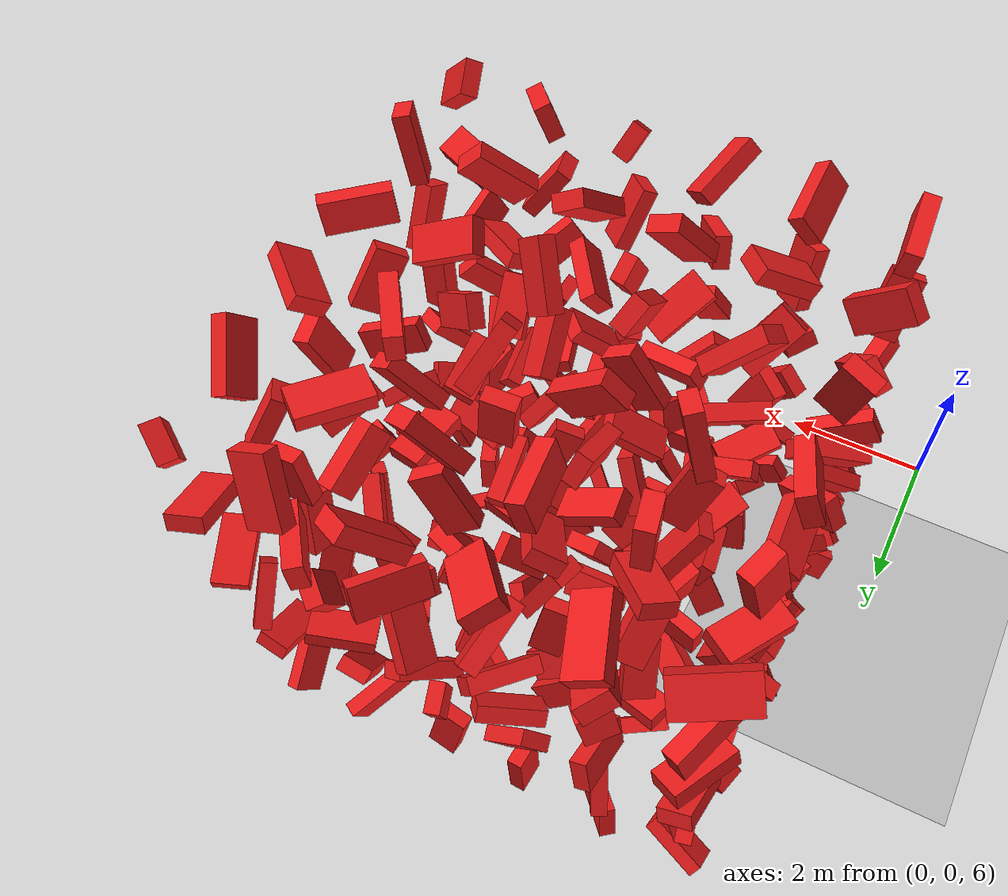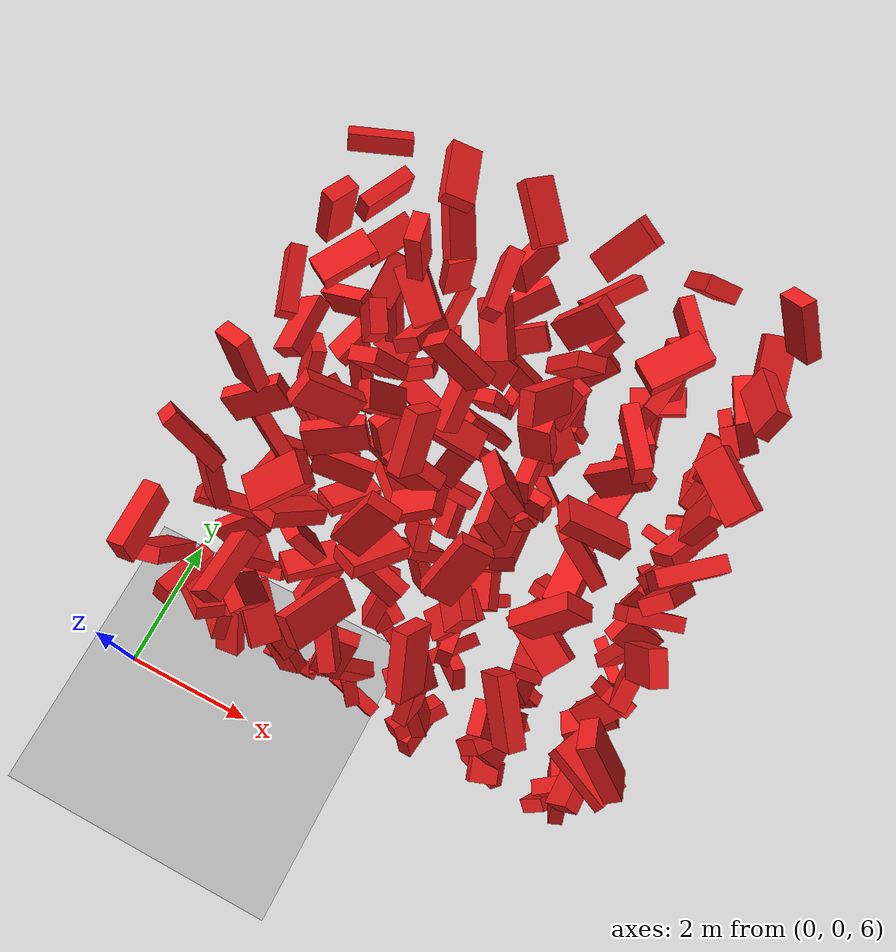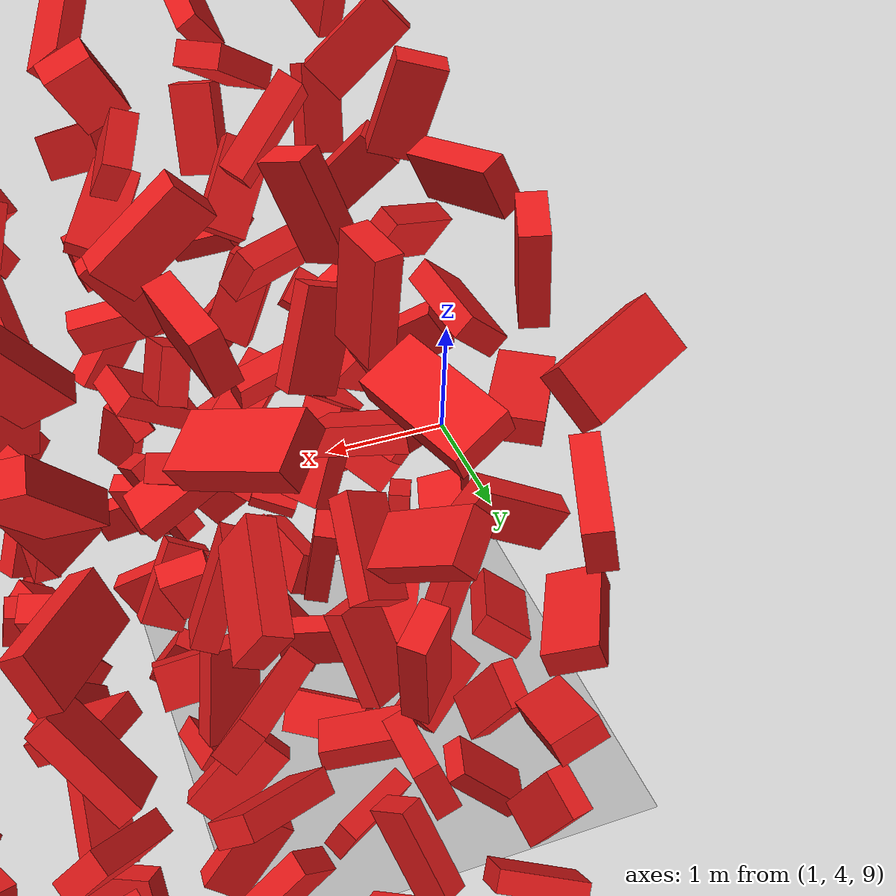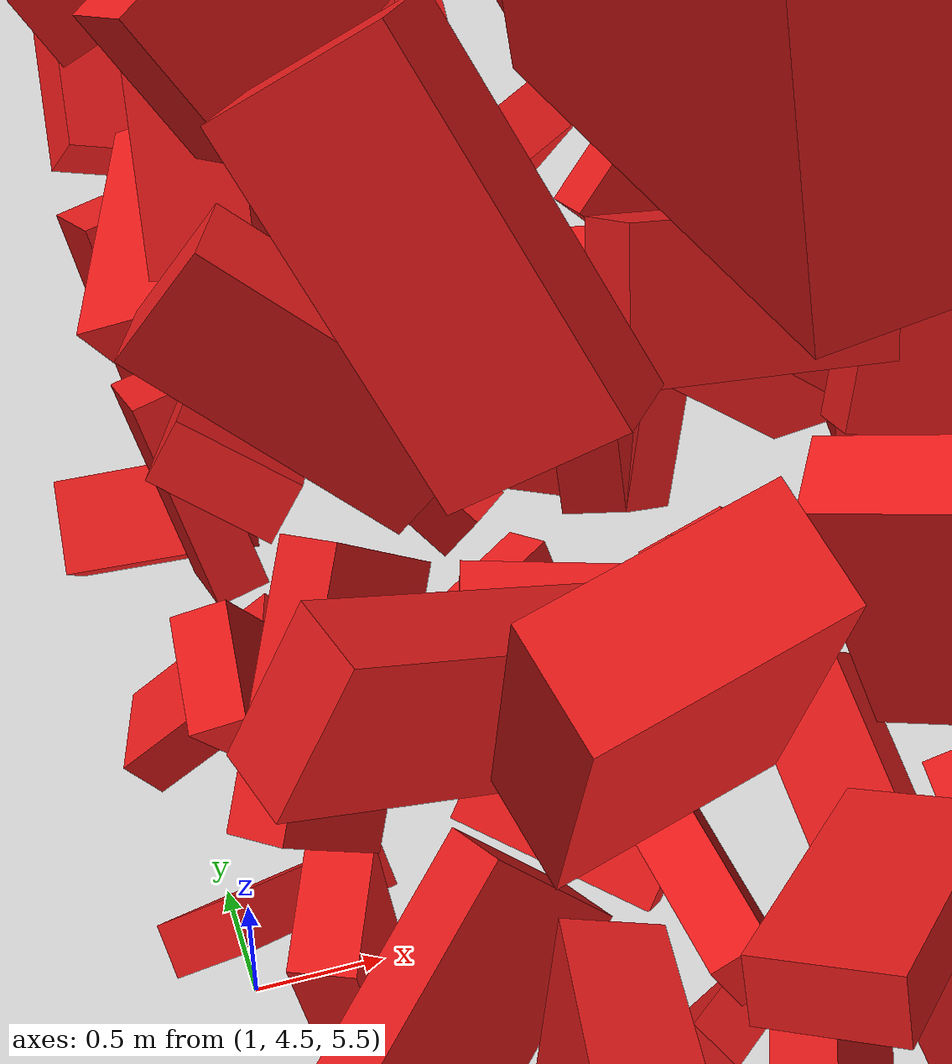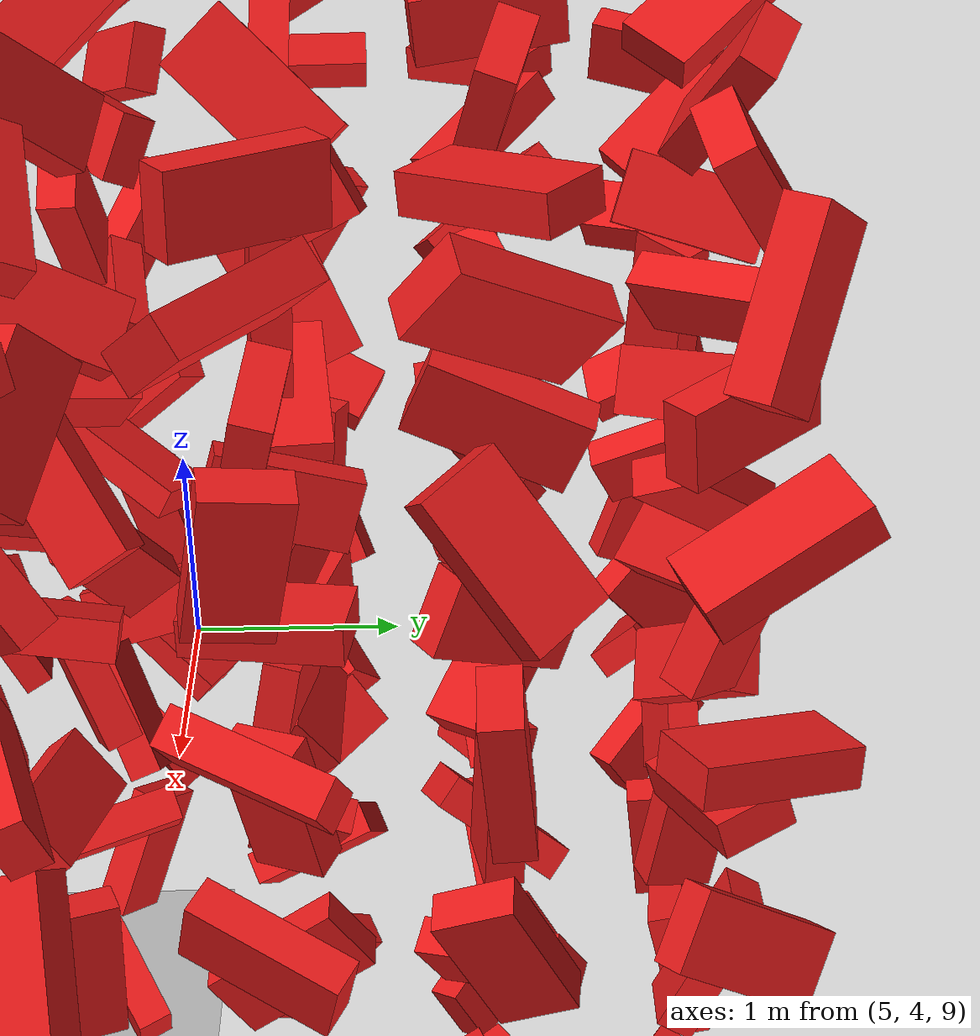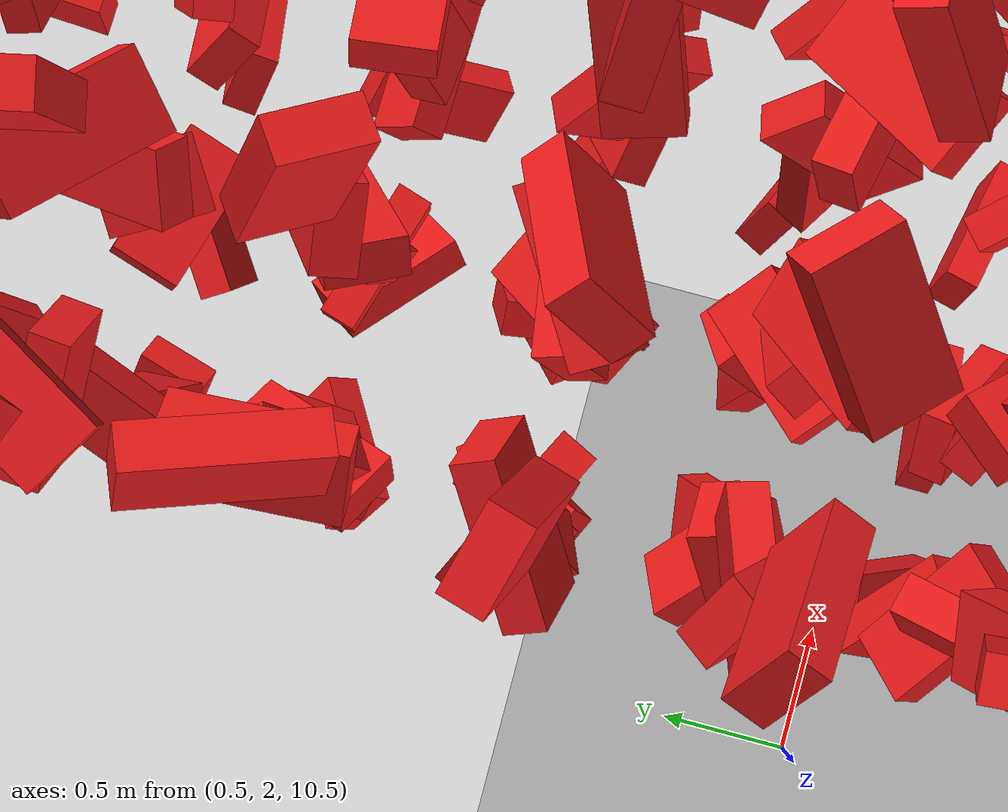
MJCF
<mujoco model="Humanoid and 100 objects">
    <compiler angle="degree"/>

    <option timestep="0.01" iterations="50" solver="PGS" jacobian="sparse" cone="elliptic" tolerance="1e-10"/>

    <size njmax="5000" nconmax="2000" nstack="1000000000"/>

    <default>
        <geom solimp=".9 .9 .01"/>

        <default class="object5">
			<geom type="box" material="geom" rgba=".9 .1 .1 1" size="0.400000 0.200000 0.100000"/>
        </default>
    </default>

    <asset>
        <texture type="skybox" builtin="gradient" width="128" height="128" rgb1=".4 .6 .8" rgb2="0 0 0"/>
        <texture name="texgeom" type="cube" builtin="flat" mark="cross" width="128" height="128"
            rgb1="0.6 0.6 0.6" rgb2="0.6 0.6 0.6" markrgb="1 1 1"/>
        <texture name="texplane" type="2d" builtin="checker" rgb1=".4 .4 .4" rgb2=".6 .6 .6"
            width="512" height="512"/>
        <material name='geom' texture="texgeom" texuniform="true"/>
        <material name='MatPlane' reflectance='0.3' texture="texplane" texrepeat="1 1" texuniform="true"/>
    </asset>

    <visual>
        <quality shadowsize="4096" offsamples="8"/>
        <map znear="0.1" force="0.05"/>
    </visual>

    <statistic extent="4"/>

    <worldbody>
        <light directional="true" diffuse=".8 .8 .8" pos="0 0 10" dir="0 0 -10"/>

        <geom pos="0 0 0" type="plane" size="3 3 .5" rgba=".7 .7 .7 1" material="MatPlane"/>
		<body pos="1.100191 1.100422 6.100310" quat="0.238620 -0.580174 -0.697054 -0.347238"> <freejoint/> <geom class="object5"/> </body>
		<body pos="1.100316 1.100036 7.200261" quat="-0.303019 0.848185 -0.127868 0.415225"> <freejoint/> <geom class="object5"/> </body>
		<body pos="1.100192 1.100236 8.300587" quat="0.314180 -0.162882 0.319775 0.878922"> <freejoint/> <geom class="object5"/> </body>
		<body pos="1.100655 1.100380 9.400304" quat="-0.294429 0.559573 -0.506297 0.586389"> <freejoint/> <geom class="object5"/> </body>
		<body pos="1.100516 1.100337 10.500049" quat="0.468975 0.579008 0.608567 -0.272872"> <freejoint/> <geom class="object5"/> </body>
		<body pos="1.100363 1.100308 11.600396" quat="-0.527208 -0.513137 0.538139 0.411277"> <freejoint/> <geom class="object5"/> </body>
		<body pos="1.100491 2.200999 6.100408" quat="0.502981 0.848894 -0.008229 0.162242"> <freejoint/> <geom class="object5"/> </body>
		<body pos="1.100736 2.200838 7.200647" quat="-0.100446 -0.404626 -0.801458 0.428782"> <freejoint/> <geom class="object5"/> </body>
		<body pos="1.100887 2.200642 8.300525" quat="-0.716420 -0.561958 0.114139 -0.397389"> <freejoint/> <geom class="object5"/> </body>
		<body pos="1.100162 2.200912 9.400837" quat="0.261951 -0.060243 -0.675950 -0.686180"> <freejoint/> <geom class="object5"/> </body>
		<body pos="1.100259 2.200153 10.500646" quat="-0.617281 0.557791 -0.548623 -0.082742"> <freejoint/> <geom class="object5"/> </body>
		<body pos="1.100260 2.200766 11.600835" quat="-0.347698 -0.165816 0.759202 -0.524618"> <freejoint/> <geom class="object5"/> </body>
		<body pos="1.100769 3.300629 6.100248" quat="-0.229177 -0.497906 0.809976 -0.208583"> <freejoint/> <geom class="object5"/> </body>
		<body pos="1.100871 3.300106 7.200661" quat="-0.025653 -0.648804 0.265729 -0.712590"> <freejoint/> <geom class="object5"/> </body>
		<body pos="1.100719 3.300549 8.300984" quat="-0.558681 -0.041924 -0.579253 0.592101"> <freejoint/> <geom class="object5"/> </body>
		<body pos="1.100434 3.300106 9.400581" quat="-0.700668 0.616954 -0.355819 -0.042724"> <freejoint/> <geom class="object5"/> </body>
		<body pos="1.100716 3.300549 10.500203" quat="-0.016285 0.327221 -0.763381 -0.556697"> <freejoint/> <geom class="object5"/> </body>
		<body pos="1.100439 3.300691 11.600453" quat="0.523217 0.330168 -0.592499 0.515925"> <freejoint/> <geom class="object5"/> </body>
		<body pos="1.100103 4.400409 6.100067" quat="0.428434 0.840662 0.323731 -0.070216"> <freejoint/> <geom class="object5"/> </body>
		<body pos="1.100155 4.400078 7.200457" quat="-0.210529 0.829052 0.085596 -0.510905"> <freejoint/> <geom class="object5"/> </body>
		<body pos="1.100500 4.400229 8.300167" quat="-0.524807 0.297554 -0.081135 0.793383"> <freejoint/> <geom class="object5"/> </body>
		<body pos="1.100821 4.400281 9.400657" quat="-0.570470 0.388315 -0.721429 -0.057577"> <freejoint/> <geom class="object5"/> </body>
		<body pos="1.100249 4.400722 10.500851" quat="-0.640980 0.246172 0.258649 -0.679444"> <freejoint/> <geom class="object5"/> </body>
		<body pos="1.100456 4.400121 11.600450" quat="0.518938 -0.623114 0.530630 -0.246706"> <freejoint/> <geom class="object5"/> </body>
		<body pos="1.100851 5.500067 6.100244" quat="-0.376771 -0.132571 -0.915014 0.056730"> <freejoint/> <geom class="object5"/> </body>
		<body pos="1.100844 5.500671 7.200928" quat="-0.104560 -0.610405 -0.178405 -0.764621"> <freejoint/> <geom class="object5"/> </body>
		<body pos="1.100137 5.500113 8.300796" quat="0.817604 -0.116307 -0.283975 0.487191"> <freejoint/> <geom class="object5"/> </body>
		<body pos="1.100481 5.500567 9.400187" quat="-0.154365 -0.211524 -0.659174 0.704925"> <freejoint/> <geom class="object5"/> </body>
		<body pos="1.100753 5.500090 10.500345" quat="-0.488298 -0.042054 -0.013062 0.871565"> <freejoint/> <geom class="object5"/> </body>
		<body pos="1.100165 5.500839 11.600767" quat="0.070061 -0.650873 0.185244 0.732899"> <freejoint/> <geom class="object5"/> </body>
		<body pos="1.100232 6.600603 6.100693" quat="-0.913030 -0.345210 0.187170 0.110337"> <freejoint/> <geom class="object5"/> </body>
		<body pos="1.100260 6.600244 7.200331" quat="0.631461 -0.064564 -0.744120 0.208263"> <freejoint/> <geom class="object5"/> </body>
		<body pos="1.100936 6.600633 8.300714" quat="-0.671555 -0.060540 -0.304796 0.672643"> <freejoint/> <geom class="object5"/> </body>
		<body pos="1.100418 6.600046 9.400620" quat="-0.068039 -0.504618 0.838540 0.193863"> <freejoint/> <geom class="object5"/> </body>
		<body pos="1.100825 6.600150 10.500594" quat="0.322147 -0.473977 0.613962 -0.542787"> <freejoint/> <geom class="object5"/> </body>
		<body pos="1.100199 6.600229 11.600317" quat="0.018541 -0.230036 0.912304 -0.338293"> <freejoint/> <geom class="object5"/> </body>
		<body pos="2.200665 1.100806 6.100078" quat="-0.660930 -0.694143 -0.202461 0.200864"> <freejoint/> <geom class="object5"/> </body>
		<body pos="2.200833 1.100384 7.200511" quat="-0.405896 -0.191106 0.529800 -0.719750"> <freejoint/> <geom class="object5"/> </body>
		<body pos="2.200155 1.100053 8.300442" quat="0.677070 -0.559914 0.442714 0.179099"> <freejoint/> <geom class="object5"/> </body>
		<body pos="2.200490 1.100463 9.400539" quat="-0.276765 0.373052 0.885360 -0.019246"> <freejoint/> <geom class="object5"/> </body>
		<body pos="2.200578 1.100294 10.500650" quat="0.559326 0.412025 -0.693330 0.191530"> <freejoint/> <geom class="object5"/> </body>
		<body pos="2.200061 1.100412 11.600934" quat="-0.608975 0.366128 0.256531 -0.655203"> <freejoint/> <geom class="object5"/> </body>
		<body pos="2.200487 2.200245 6.100600" quat="0.445777 0.614601 -0.443416 0.476372"> <freejoint/> <geom class="object5"/> </body>
		<body pos="2.200584 2.200007 7.200104" quat="0.551152 -0.559184 -0.618512 0.031412"> <freejoint/> <geom class="object5"/> </body>
		<body pos="2.200416 2.200688 8.300712" quat="0.896094 -0.179873 0.057720 0.401659"> <freejoint/> <geom class="object5"/> </body>
		<body pos="2.200888 2.200998 9.400427" quat="-0.373499 -0.735251 -0.279965 0.491452"> <freejoint/> <geom class="object5"/> </body>
		<body pos="2.200621 2.200300 10.500684" quat="-0.402232 -0.763807 -0.467559 0.190256"> <freejoint/> <geom class="object5"/> </body>
		<body pos="2.200259 2.200338 11.600462" quat="-0.346068 -0.254548 -0.163078 0.888171"> <freejoint/> <geom class="object5"/> </body>
		<body pos="2.200594 3.300448 6.100273" quat="0.803853 -0.312562 -0.429962 -0.266941"> <freejoint/> <geom class="object5"/> </body>
		<body pos="2.200542 3.300734 7.200979" quat="0.342207 0.678108 -0.509426 -0.404411"> <freejoint/> <geom class="object5"/> </body>
		<body pos="2.200769 3.300939 8.300831" quat="-0.482677 0.092153 0.220396 0.842589"> <freejoint/> <geom class="object5"/> </body>
		<body pos="2.200956 3.300203 9.400293" quat="0.135616 0.008464 -0.846879 -0.514133"> <freejoint/> <geom class="object5"/> </body>
		<body pos="2.200290 3.300039 10.500640" quat="-0.255762 0.104996 -0.509379 0.814920"> <freejoint/> <geom class="object5"/> </body>
		<body pos="2.200565 3.300640 11.600007" quat="-0.006949 -0.402074 0.379606 -0.833179"> <freejoint/> <geom class="object5"/> </body>
		<body pos="2.200013 4.400532 6.100430" quat="0.329794 0.871373 -0.295061 -0.211859"> <freejoint/> <geom class="object5"/> </body>
		<body pos="2.200747 4.400719 7.200984" quat="-0.113308 0.096898 0.715723 -0.682285"> <freejoint/> <geom class="object5"/> </body>
		<body pos="2.200077 4.400843 8.300323" quat="-0.117160 0.735412 -0.163233 -0.647146"> <freejoint/> <geom class="object5"/> </body>
		<body pos="2.200022 4.400006 9.400067" quat="-0.842362 0.002259 -0.474728 -0.255059"> <freejoint/> <geom class="object5"/> </body>
		<body pos="2.200860 4.400924 10.500943" quat="-0.611523 0.537886 -0.280091 -0.508200"> <freejoint/> <geom class="object5"/> </body>
		<body pos="2.200817 4.400637 11.600571" quat="-0.754720 -0.304525 0.573824 -0.091588"> <freejoint/> <geom class="object5"/> </body>
		<body pos="2.200229 5.500732 6.100164" quat="0.110846 0.262317 -0.775003 -0.564157"> <freejoint/> <geom class="object5"/> </body>
		<body pos="2.200147 5.500713 7.200862" quat="-0.144168 -0.081066 0.113506 -0.979674"> <freejoint/> <geom class="object5"/> </body>
		<body pos="2.200197 5.500320 8.300785" quat="-0.751543 0.172642 0.436732 0.463295"> <freejoint/> <geom class="object5"/> </body>
		<body pos="2.200238 5.500695 9.400328" quat="0.670746 0.011543 -0.399107 -0.625044"> <freejoint/> <geom class="object5"/> </body>
		<body pos="2.200777 5.500897 10.500521" quat="-0.109238 0.384412 0.887259 0.230362"> <freejoint/> <geom class="object5"/> </body>
		<body pos="2.200041 5.500779 11.600597" quat="-0.084929 -0.717360 -0.060249 0.688877"> <freejoint/> <geom class="object5"/> </body>
		<body pos="2.200346 6.600905 6.100654" quat="0.137622 0.434092 0.495457 0.739694"> <freejoint/> <geom class="object5"/> </body>
		<body pos="2.200129 6.600282 7.200851" quat="-0.683323 -0.401883 0.605801 0.067567"> <freejoint/> <geom class="object5"/> </body>
		<body pos="2.200359 6.600905 8.300064" quat="0.501140 -0.465954 0.663978 -0.301461"> <freejoint/> <geom class="object5"/> </body>
		<body pos="2.200919 6.600371 9.400920" quat="-0.300372 -0.671352 0.235466 -0.635309"> <freejoint/> <geom class="object5"/> </body>
		<body pos="2.200313 6.600241 10.500146" quat="-0.381288 0.391407 0.835424 -0.059038"> <freejoint/> <geom class="object5"/> </body>
		<body pos="2.200052 6.600882 11.600373" quat="-0.190898 -0.794857 0.568120 0.094869"> <freejoint/> <geom class="object5"/> </body>
		<body pos="3.300777 1.100145 6.100266" quat="0.031405 -0.196308 -0.672871 -0.712546"> <freejoint/> <geom class="object5"/> </body>
		<body pos="3.300118 1.100947 7.200327" quat="-0.639341 -0.140774 0.669666 -0.350676"> <freejoint/> <geom class="object5"/> </body>
		<body pos="3.300005 1.100670 8.300268" quat="0.107068 0.421080 -0.538490 0.721981"> <freejoint/> <geom class="object5"/> </body>
		<body pos="3.300435 1.100052 9.400403" quat="0.479135 -0.593627 -0.595160 -0.252629"> <freejoint/> <geom class="object5"/> </body>
		<body pos="3.300442 1.100419 10.500455" quat="-0.482304 -0.716291 0.200565 0.462692"> <freejoint/> <geom class="object5"/> </body>
		<body pos="3.300560 1.100706 11.600228" quat="-0.794948 -0.189577 -0.344041 -0.462335"> <freejoint/> <geom class="object5"/> </body>
		<body pos="3.300132 2.200551 6.100317" quat="-0.730256 0.590882 -0.340949 -0.036572"> <freejoint/> <geom class="object5"/> </body>
		<body pos="3.300102 2.200095 7.200242" quat="0.327690 0.488065 0.359372 -0.724751"> <freejoint/> <geom class="object5"/> </body>
		<body pos="3.300107 2.201000 8.300832" quat="0.531610 -0.391446 0.731781 -0.169285"> <freejoint/> <geom class="object5"/> </body>
		<body pos="3.300654 2.200861 9.400412" quat="0.154891 0.028684 -0.580579 0.798821"> <freejoint/> <geom class="object5"/> </body>
		<body pos="3.300449 2.200388 10.500788" quat="-0.267915 -0.822380 -0.489067 0.112811"> <freejoint/> <geom class="object5"/> </body>
		<body pos="3.300099 2.200563 11.600133" quat="0.501452 0.232469 0.489424 -0.674513"> <freejoint/> <geom class="object5"/> </body>
		<body pos="3.300185 3.300933 6.100267" quat="0.550526 0.178803 -0.636993 0.509108"> <freejoint/> <geom class="object5"/> </body>
		<body pos="3.300731 3.300576 7.200012" quat="0.474562 0.719947 0.435123 -0.259105"> <freejoint/> <geom class="object5"/> </body>
		<body pos="3.300739 3.300992 8.300195" quat="-0.527300 -0.082884 -0.791467 -0.297767"> <freejoint/> <geom class="object5"/> </body>
		<body pos="3.300327 3.300572 9.400408" quat="0.347651 -0.148187 0.925431 -0.027498"> <freejoint/> <geom class="object5"/> </body>
		<body pos="3.300744 3.300161 10.500300" quat="0.318940 0.343772 0.641565 -0.607036"> <freejoint/> <geom class="object5"/> </body>
		<body pos="3.300831 3.300609 11.600375" quat="0.572936 -0.377563 -0.711198 0.152932"> <freejoint/> <geom class="object5"/> </body>
		<body pos="3.300751 4.400249 6.100393" quat="0.095283 0.669883 0.604754 0.420060"> <freejoint/> <geom class="object5"/> </body>
		<body pos="3.300203 4.400547 7.200227" quat="0.451385 0.890898 0.009686 -0.049588"> <freejoint/> <geom class="object5"/> </body>
		<body pos="3.300105 4.400834 8.300677" quat="-0.651024 -0.445320 0.352350 -0.503693"> <freejoint/> <geom class="object5"/> </body>
		<body pos="3.300300 4.400879 9.400786" quat="-0.019389 -0.965646 -0.057465 0.252684"> <freejoint/> <geom class="object5"/> </body>
		<body pos="3.300493 4.400826 10.500049" quat="-0.262585 -0.654695 0.435995 0.558866"> <freejoint/> <geom class="object5"/> </body>
		<body pos="3.300947 4.400315 11.600786" quat="0.245441 0.257790 -0.627638 0.692368"> <freejoint/> <geom class="object5"/> </body>
		<body pos="3.300820 5.500238 6.100146" quat="0.538394 0.732244 0.314517 -0.273916"> <freejoint/> <geom class="object5"/> </body>
		<body pos="3.300871 5.500570 7.200216" quat="-0.447119 -0.816118 -0.236499 0.279472"> <freejoint/> <geom class="object5"/> </body>
		<body pos="3.300733 5.500081 8.300167" quat="0.510544 0.567660 0.557808 -0.325512"> <freejoint/> <geom class="object5"/> </body>
		<body pos="3.300613 5.500816 9.400751" quat="-0.535166 -0.035462 0.819077 0.203599"> <freejoint/> <geom class="object5"/> </body>
		<body pos="3.300355 5.500970 10.500302" quat="-0.513426 -0.060612 0.374058 -0.769936"> <freejoint/> <geom class="object5"/> </body>
		<body pos="3.300031 5.500519 11.600882" quat="-0.551678 0.364058 0.483751 -0.573670"> <freejoint/> <geom class="object5"/> </body>
		<body pos="3.300321 6.600167 6.100847" quat="-0.053255 0.695212 0.020708 -0.716530"> <freejoint/> <geom class="object5"/> </body>
		<body pos="3.300628 6.600635 7.200768" quat="0.224833 0.314156 -0.542069 0.746268"> <freejoint/> <geom class="object5"/> </body>
		<body pos="3.300662 6.600236 8.300214" quat="0.863966 0.418222 -0.050858 0.275802"> <freejoint/> <geom class="object5"/> </body>
		<body pos="3.300223 6.600959 9.400257" quat="0.740474 0.514290 0.126848 0.413660"> <freejoint/> <geom class="object5"/> </body>
		<body pos="3.300280 6.600248 10.500076" quat="0.418112 0.491925 -0.688836 -0.329693"> <freejoint/> <geom class="object5"/> </body>
		<body pos="3.300607 6.600088 11.600372" quat="-0.359096 -0.244806 -0.079097 -0.897142"> <freejoint/> <geom class="object5"/> </body>
		<body pos="4.400361 1.100121 6.100427" quat="-0.651890 -0.350156 -0.478716 -0.472505"> <freejoint/> <geom class="object5"/> </body>
		<body pos="4.400525 1.100735 7.200104" quat="0.439543 0.165796 -0.436546 -0.767295"> <freejoint/> <geom class="object5"/> </body>
		<body pos="4.400618 1.100073 8.300129" quat="0.535046 -0.028581 -0.790627 0.296342"> <freejoint/> <geom class="object5"/> </body>
		<body pos="4.400054 1.100798 9.400622" quat="-0.154588 -0.702628 0.235211 0.653523"> <freejoint/> <geom class="object5"/> </body>
		<body pos="4.400110 1.100751 10.500215" quat="0.494032 0.378607 -0.775764 0.103820"> <freejoint/> <geom class="object5"/> </body>
		<body pos="4.400463 1.100613 11.600190" quat="0.504670 -0.339127 -0.768037 0.201050"> <freejoint/> <geom class="object5"/> </body>
		<body pos="4.400258 2.200712 6.100939" quat="0.432691 0.081090 0.768268 0.464723"> <freejoint/> <geom class="object5"/> </body>
		<body pos="4.400487 2.200578 7.200897" quat="-0.644137 -0.526807 -0.553455 -0.035349"> <freejoint/> <geom class="object5"/> </body>
		<body pos="4.400846 2.200731 8.300624" quat="0.605948 0.444038 -0.531358 -0.391556"> <freejoint/> <geom class="object5"/> </body>
		<body pos="4.400753 2.200006 9.400748" quat="0.374870 -0.339155 0.845324 0.172837"> <freejoint/> <geom class="object5"/> </body>
		<body pos="4.400449 2.200806 10.500430" quat="-0.791169 -0.407096 0.268803 0.368875"> <freejoint/> <geom class="object5"/> </body>
		<body pos="4.400228 2.200018 11.600671" quat="0.098132 -0.596897 0.650878 0.458741"> <freejoint/> <geom class="object5"/> </body>
		<body pos="4.400057 3.300959 6.100691" quat="-0.376296 0.017152 0.640883 0.668862"> <freejoint/> <geom class="object5"/> </body>
		<body pos="4.400772 3.300050 7.200521" quat="0.174331 0.540741 0.747141 0.344947"> <freejoint/> <geom class="object5"/> </body>
		<body pos="4.400397 3.300377 8.300057" quat="-0.183386 -0.542137 0.563395 -0.595855"> <freejoint/> <geom class="object5"/> </body>
		<body pos="4.400381 3.300264 9.400020" quat="0.147687 -0.474126 0.285612 -0.819646"> <freejoint/> <geom class="object5"/> </body>
		<body pos="4.400162 3.300532 10.500610" quat="0.065870 -0.651825 -0.610792 0.444655"> <freejoint/> <geom class="object5"/> </body>
		<body pos="4.400295 3.300194 11.600185" quat="-0.627935 0.564429 0.045658 0.533885"> <freejoint/> <geom class="object5"/> </body>
		<body pos="4.400424 4.400804 6.100937" quat="-0.062367 -0.703231 -0.415640 -0.573429"> <freejoint/> <geom class="object5"/> </body>
		<body pos="4.400663 4.400968 7.200751" quat="0.168581 0.864969 0.098561 0.462271"> <freejoint/> <geom class="object5"/> </body>
		<body pos="4.400270 4.400850 8.300610" quat="-0.003844 -0.123770 -0.636272 0.761462"> <freejoint/> <geom class="object5"/> </body>
		<body pos="4.400093 4.400761 9.400005" quat="-0.554670 -0.487022 0.574676 0.353410"> <freejoint/> <geom class="object5"/> </body>
		<body pos="4.400547 4.400799 10.500565" quat="0.579259 0.494967 0.480783 -0.433953"> <freejoint/> <geom class="object5"/> </body>
		<body pos="4.400647 4.400074 11.600896" quat="0.321181 -0.486941 0.212254 -0.784015"> <freejoint/> <geom class="object5"/> </body>
		<body pos="4.400809 5.500017 6.100846" quat="-0.796739 0.498451 -0.300443 0.162751"> <freejoint/> <geom class="object5"/> </body>
		<body pos="4.400955 5.500625 7.200063" quat="-0.414695 -0.603321 -0.678986 0.054856"> <freejoint/> <geom class="object5"/> </body>
		<body pos="4.400901 5.500825 8.300437" quat="-0.889835 -0.205496 -0.255362 0.317418"> <freejoint/> <geom class="object5"/> </body>
		<body pos="4.400563 5.500194 9.400617" quat="-0.322842 0.681269 0.469099 0.459990"> <freejoint/> <geom class="object5"/> </body>
		<body pos="4.400541 5.500539 10.500078" quat="-0.316247 0.395780 -0.460512 -0.728886"> <freejoint/> <geom class="object5"/> </body>
		<body pos="4.400616 5.500548 11.600098" quat="0.333731 -0.332936 0.731397 0.492784"> <freejoint/> <geom class="object5"/> </body>
		<body pos="4.400538 6.600402 6.100805" quat="-0.625927 0.458311 -0.405238 -0.483683"> <freejoint/> <geom class="object5"/> </body>
		<body pos="4.400262 6.600366 7.200899" quat="0.652376 0.021949 -0.735303 0.182354"> <freejoint/> <geom class="object5"/> </body>
		<body pos="4.400561 6.600009 8.300518" quat="-0.433736 -0.059086 -0.518938 0.734224"> <freejoint/> <geom class="object5"/> </body>
		<body pos="4.400199 6.600660 9.400218" quat="0.284102 -0.398997 -0.124312 0.862922"> <freejoint/> <geom class="object5"/> </body>
		<body pos="4.400098 6.600770 10.500970" quat="-0.800664 0.402403 0.269319 -0.352812"> <freejoint/> <geom class="object5"/> </body>
		<body pos="4.400637 6.600629 11.600235" quat="0.311821 -0.402243 0.773139 0.378451"> <freejoint/> <geom class="object5"/> </body>
		<body pos="5.500475 1.100411 6.100765" quat="-0.380159 0.857474 -0.016787 0.346316"> <freejoint/> <geom class="object5"/> </body>
		<body pos="5.500323 1.100385 7.200525" quat="-0.805856 0.040944 -0.144038 0.572863"> <freejoint/> <geom class="object5"/> </body>
		<body pos="5.500960 1.100442 8.300969" quat="0.000267 -0.536294 0.016887 -0.843862"> <freejoint/> <geom class="object5"/> </body>
		<body pos="5.500743 1.100006 9.400564" quat="-0.475824 -0.113580 0.591437 0.641009"> <freejoint/> <geom class="object5"/> </body>
		<body pos="5.500971 1.100547 10.500270" quat="-0.881080 0.001398 -0.458119 -0.117568"> <freejoint/> <geom class="object5"/> </body>
		<body pos="5.500012 1.100609 11.600274" quat="0.663259 0.580923 -0.116028 -0.457333"> <freejoint/> <geom class="object5"/> </body>
		<body pos="5.500539 2.200685 6.100723" quat="-0.291522 0.384077 -0.692540 -0.536552"> <freejoint/> <geom class="object5"/> </body>
		<body pos="5.500616 2.200666 7.200542" quat="-0.169168 0.649552 -0.355272 -0.650574"> <freejoint/> <geom class="object5"/> </body>
		<body pos="5.500161 2.200033 8.300762" quat="0.236605 -0.654864 -0.572446 0.432986"> <freejoint/> <geom class="object5"/> </body>
		<body pos="5.500423 2.200368 9.400771" quat="0.705247 -0.226710 -0.271513 -0.614419"> <freejoint/> <geom class="object5"/> </body>
		<body pos="5.500330 2.200511 10.500934" quat="-0.299007 0.914413 -0.272675 0.009556"> <freejoint/> <geom class="object5"/> </body>
		<body pos="5.500234 2.200756 11.600793" quat="-0.625061 0.634775 0.437891 0.120875"> <freejoint/> <geom class="object5"/> </body>
		<body pos="5.500070 3.300647 6.100177" quat="-0.595321 -0.108448 -0.538046 0.586803"> <freejoint/> <geom class="object5"/> </body>
		<body pos="5.500775 3.300462 7.200919" quat="0.661616 0.118593 -0.726046 0.145108"> <freejoint/> <geom class="object5"/> </body>
		<body pos="5.500117 3.300952 8.300762" quat="-0.130710 0.027803 -0.410960 -0.901806"> <freejoint/> <geom class="object5"/> </body>
		<body pos="5.500820 3.300801 9.400723" quat="-0.667659 0.207550 0.092718 -0.708913"> <freejoint/> <geom class="object5"/> </body>
		<body pos="5.500992 3.300934 10.500752" quat="0.370751 0.025474 -0.812360 0.449406"> <freejoint/> <geom class="object5"/> </body>
		<body pos="5.500236 3.300484 11.600259" quat="-0.924947 0.290790 -0.194365 -0.148783"> <freejoint/> <geom class="object5"/> </body>
		<body pos="5.500205 4.400794 6.100709" quat="-0.576085 0.503634 -0.112543 -0.633887"> <freejoint/> <geom class="object5"/> </body>
		<body pos="5.500389 4.400907 7.200520" quat="0.323361 0.631855 -0.327266 -0.623774"> <freejoint/> <geom class="object5"/> </body>
		<body pos="5.500989 4.400895 8.300117" quat="0.638878 0.218241 0.729418 -0.110249"> <freejoint/> <geom class="object5"/> </body>
		<body pos="5.500432 4.400889 9.400885" quat="-0.015743 -0.757292 -0.652487 -0.022831"> <freejoint/> <geom class="object5"/> </body>
		<body pos="5.500149 4.400037 10.500890" quat="-0.716205 -0.542623 0.290431 -0.329029"> <freejoint/> <geom class="object5"/> </body>
		<body pos="5.500860 4.400727 11.600055" quat="0.360446 0.294905 0.613626 0.637630"> <freejoint/> <geom class="object5"/> </body>
		<body pos="5.500317 5.500467 6.100138" quat="-0.712698 0.068745 -0.637320 -0.284883"> <freejoint/> <geom class="object5"/> </body>
		<body pos="5.500352 5.500502 7.200675" quat="-0.759250 0.377847 0.349159 -0.398571"> <freejoint/> <geom class="object5"/> </body>
		<body pos="5.500947 5.500116 8.300135" quat="-0.462637 0.572263 -0.451379 -0.504717"> <freejoint/> <geom class="object5"/> </body>
		<body pos="5.500365 5.500832 9.400955" quat="0.538275 -0.669832 0.178003 -0.479479"> <freejoint/> <geom class="object5"/> </body>
		<body pos="5.500588 5.500925 10.500404" quat="0.582977 0.319137 -0.577474 -0.474145"> <freejoint/> <geom class="object5"/> </body>
		<body pos="5.500866 5.500322 11.600763" quat="0.897284 0.012359 -0.068924 0.435865"> <freejoint/> <geom class="object5"/> </body>
		<body pos="5.500295 6.600655 6.100906" quat="0.700527 0.504536 0.448655 0.231116"> <freejoint/> <geom class="object5"/> </body>
		<body pos="5.500644 6.600378 7.200615" quat="-0.639123 -0.435895 -0.280415 0.568229"> <freejoint/> <geom class="object5"/> </body>
		<body pos="5.500203 6.600256 8.300832" quat="-0.127254 0.967835 0.194343 0.096609"> <freejoint/> <geom class="object5"/> </body>
		<body pos="5.500671 6.600340 9.400984" quat="-0.131498 0.642598 0.414138 0.631083"> <freejoint/> <geom class="object5"/> </body>
		<body pos="5.500500 6.600111 10.500561" quat="0.289334 0.318156 0.616436 0.659598"> <freejoint/> <geom class="object5"/> </body>
		<body pos="5.500177 6.600570 11.600106" quat="0.503743 -0.295826 0.409561 0.700706"> <freejoint/> <geom class="object5"/> </body>
		<body pos="6.600982 1.100057 6.100844" quat="0.532238 0.017110 -0.603627 -0.593350"> <freejoint/> <geom class="object5"/> </body>
		<body pos="6.600927 1.100973 7.200980" quat="0.228775 -0.528132 -0.469022 0.669893"> <freejoint/> <geom class="object5"/> </body>
		<body pos="6.600251 1.100221 8.300814" quat="-0.097430 0.437913 -0.581565 -0.678617"> <freejoint/> <geom class="object5"/> </body>
		<body pos="6.600176 1.100209 9.400531" quat="-0.320029 0.627124 -0.602690 0.375582"> <freejoint/> <geom class="object5"/> </body>
		<body pos="6.600716 1.100739 10.500416" quat="0.051124 -0.203279 -0.961827 0.175936"> <freejoint/> <geom class="object5"/> </body>
		<body pos="6.600292 1.100258 11.600601" quat="0.421669 -0.050178 -0.850740 0.309709"> <freejoint/> <geom class="object5"/> </body>
		<body pos="6.600472 2.201000 6.100344" quat="-0.351202 -0.557838 -0.611360 -0.437850"> <freejoint/> <geom class="object5"/> </body>
		<body pos="6.600222 2.200374 7.200890" quat="-0.895829 0.190605 0.303205 -0.263111"> <freejoint/> <geom class="object5"/> </body>
		<body pos="6.600144 2.200865 8.300731" quat="0.363675 -0.422383 0.767482 0.316710"> <freejoint/> <geom class="object5"/> </body>
		<body pos="6.600210 2.200193 9.400651" quat="-0.519457 -0.548975 0.566178 -0.328987"> <freejoint/> <geom class="object5"/> </body>
		<body pos="6.600077 2.200304 10.500667" quat="0.209978 -0.673728 -0.212840 0.675794"> <freejoint/> <geom class="object5"/> </body>
		<body pos="6.600816 2.200259 11.600395" quat="0.267866 -0.742543 -0.087037 -0.607703"> <freejoint/> <geom class="object5"/> </body>
		<body pos="6.600522 3.300393 6.100988" quat="0.362309 0.177807 0.604472 0.686826"> <freejoint/> <geom class="object5"/> </body>
		<body pos="6.600909 3.300309 7.200167" quat="0.677008 -0.423061 -0.580368 -0.160786"> <freejoint/> <geom class="object5"/> </body>
		<body pos="6.600100 3.300010 8.300042" quat="0.269728 -0.873747 0.061778 0.399996"> <freejoint/> <geom class="object5"/> </body>
		<body pos="6.600177 3.300069 9.400950" quat="0.599269 0.767042 0.228554 -0.016899"> <freejoint/> <geom class="object5"/> </body>
		<body pos="6.600386 3.300074 10.500366" quat="0.509786 -0.608015 0.036691 0.607528"> <freejoint/> <geom class="object5"/> </body>
		<body pos="6.600478 3.300353 11.600791" quat="-0.713865 0.610084 0.221346 -0.263059"> <freejoint/> <geom class="object5"/> </body>
		<body pos="6.600088 4.400990 6.100084" quat="0.422618 -0.479751 0.642863 0.421852"> <freejoint/> <geom class="object5"/> </body>
		<body pos="6.600121 4.400876 7.200867" quat="-0.058011 -0.603198 -0.462375 0.647299"> <freejoint/> <geom class="object5"/> </body>
		<body pos="6.600492 4.400930 8.300055" quat="-0.244985 0.485222 -0.594957 0.592088"> <freejoint/> <geom class="object5"/> </body>
		<body pos="6.600510 4.400913 9.400574" quat="0.405372 0.735290 0.520369 0.155687"> <freejoint/> <geom class="object5"/> </body>
		<body pos="6.600791 4.400748 10.500314" quat="0.006860 0.768820 0.109414 0.629998"> <freejoint/> <geom class="object5"/> </body>
		<body pos="6.600677 4.400766 11.600635" quat="0.113835 0.326877 0.876476 0.334637"> <freejoint/> <geom class="object5"/> </body>
		<body pos="6.600059 5.500343 6.100529" quat="-0.349121 0.159260 -0.565334 -0.730170"> <freejoint/> <geom class="object5"/> </body>
		<body pos="6.600761 5.500147 7.200453" quat="-0.257780 -0.613778 0.548177 -0.506288"> <freejoint/> <geom class="object5"/> </body>
		<body pos="6.600461 5.500700 8.300400" quat="0.619059 0.178369 0.758055 0.101504"> <freejoint/> <geom class="object5"/> </body>
		<body pos="6.600178 5.500392 9.400248" quat="-0.498189 0.447177 -0.508608 -0.541442"> <freejoint/> <geom class="object5"/> </body>
		<body pos="6.600225 5.500547 10.500876" quat="-0.471711 -0.363409 0.803382 0.000271"> <freejoint/> <geom class="object5"/> </body>
		<body pos="6.600090 5.500337 11.600063" quat="-0.324962 0.443375 0.319121 -0.771997"> <freejoint/> <geom class="object5"/> </body>
		<body pos="6.600023 6.600189 6.100502" quat="-0.431363 0.494116 0.254378 -0.710681"> <freejoint/> <geom class="object5"/> </body>
		<body pos="6.600482 6.600118 7.200168" quat="-0.669174 -0.290520 -0.099080 0.676748"> <freejoint/> <geom class="object5"/> </body>
		<body pos="6.600913 6.600763 8.300023" quat="0.608342 0.103210 0.564294 0.548490"> <freejoint/> <geom class="object5"/> </body>
		<body pos="6.600768 6.600178 9.400459" quat="0.541698 -0.128929 -0.029603 0.830099"> <freejoint/> <geom class="object5"/> </body>
		<body pos="6.600034 6.600091 10.500002" quat="0.576812 0.202669 -0.123674 0.781613"> <freejoint/> <geom class="object5"/> </body>
		<body pos="6.600026 6.600182 11.600428" quat="-0.710684 0.485642 -0.492599 -0.128167"> <freejoint/> <geom class="object5"/> </body>

    </worldbody>
</mujoco>
